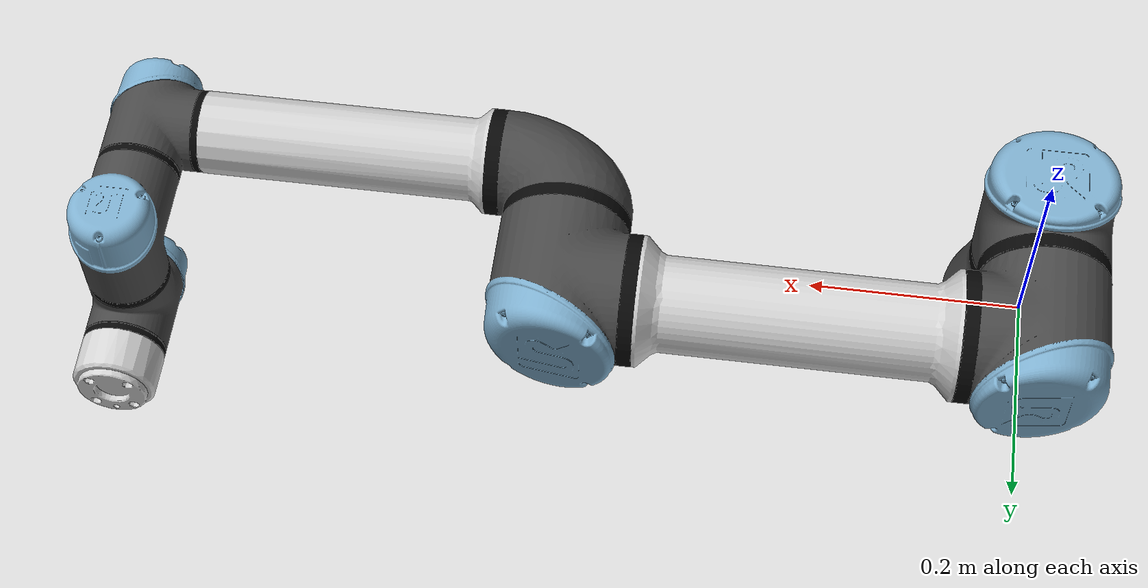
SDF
<?xml version="1.0"?>
<sdf version='1.6'>
  <model name='ur5e'>
    <link name='base_link'>
      <pose frame=''>0 0 0 0 -0 0</pose>
      <inertial>
        <pose frame=''>0 0 0 0 -0 0</pose>
        <mass>4</mass>
        <inertia>
          <ixx>0.00443333</ixx>
          <ixy>0</ixy>
          <ixz>0</ixz>
          <iyy>0.00443333</iyy>
          <iyz>0</iyz>
          <izz>0.0072</izz>
        </inertia>
      </inertial>
      <collision name='base_link_collision'>
        <pose frame=''>0 0 0 0 -0 0</pose>
        <geometry>
          <mesh>
            <scale>1 1 1</scale>
            <uri>model://ur_e_description/meshes/ur5e/collision/base.stl</uri>
          </mesh>
        </geometry>
      </collision>
      <visual name='base_link_visual'>
        <pose frame=''>0 0 0 0 -0 0</pose>
        <geometry>
          <mesh>
            <scale>1 1 1</scale>
            <uri>model://ur_e_description/meshes/ur5e/visual/base.dae</uri>
          </mesh>
        </geometry>
      </visual>
    </link>
    <joint name='world_joint' type='fixed'>
      <child>base_link</child>
      <parent>world</parent>
    </joint>
    <link name='shoulder_link'>
      <pose frame=''>0 0 0.163 0 -0 0</pose>
      <inertial>
        <pose frame=''>0 0 0 0 -0 0</pose>
        <mass>3.7</mass>
        <inertia>
          <ixx>0.0102675</ixx>
          <ixy>0</ixy>
          <ixz>0</ixz>
          <iyy>0.0102675</iyy>
          <iyz>0</iyz>
          <izz>0.00666</izz>
        </inertia>
      </inertial>
      <collision name='shoulder_link_collision'>
        <pose frame=''>0 0 0 0 -0 0</pose>
        <geometry>
          <mesh>
            <scale>1 1 1</scale>
            <uri>model://ur_e_description/meshes/ur5e/collision/shoulder.stl</uri>
          </mesh>
        </geometry>
        <surface>
          <contact>
            <ode/>
          </contact>
          <friction>
            <ode/>
          </friction>
        </surface>
      </collision>
      <visual name='shoulder_link_visual'>
        <pose frame=''>0 0 0 0 -0 0</pose>
        <geometry>
          <mesh>
            <scale>1 1 1</scale>
            <uri>model://ur_e_description/meshes/ur5e/visual/shoulder.dae</uri>
          </mesh>
        </geometry>
        <material>
          <script>
            <uri>__default__</uri>
            <name>__default__</name>
          </script>
        </material>
      </visual>
      <gravity>1</gravity>
      <velocity_decay/>
      <self_collide>1</self_collide>
    </link>
    <joint name='shoulder_pan_joint' type='revolute'>
      <child>shoulder_link</child>
      <parent>base_link</parent>
      <axis>
        <xyz>0 0 1</xyz>
        <limit>
          <lower>-6.28319</lower>
          <upper>6.28319</upper>
          <effort>150</effort>
          <velocity>3.14</velocity>
        </limit>
        <dynamics>
          <damping>0</damping>
          <friction>0</friction>
          <spring_reference>0</spring_reference>
          <spring_stiffness>0</spring_stiffness>
        </dynamics>
        <use_parent_model_frame>1</use_parent_model_frame>
      </axis>
    </joint>
    <link name='upper_arm_link'>
      <pose frame=''>0 0.138 0.163 3.14159 1.57079 3.14159</pose>
      <inertial>
        <pose frame=''>0 0 0.2125 0 -0 0</pose>
        <mass>8.393</mass>
        <inertia>
          <ixx>0.133886</ixx>
          <ixy>0</ixy>
          <ixz>0</ixz>
          <iyy>0.133886</iyy>
          <iyz>0</iyz>
          <izz>0.0151074</izz>
        </inertia>
      </inertial>
      <collision name='upper_arm_link_collision'>
        <pose frame=''>0 0 0 0 -0 0</pose>
        <geometry>
          <mesh>
            <scale>1 1 1</scale>
            <uri>model://ur_e_description/meshes/ur5e/collision/upperarm.stl</uri>
          </mesh>
        </geometry>
        <surface>
          <contact>
            <ode/>
          </contact>
          <friction>
            <ode/>
          </friction>
        </surface>
      </collision>
      <visual name='upper_arm_link_visual'>
        <pose frame=''>0 0 0 0 -0 0</pose>
        <geometry>
          <mesh>
            <scale>1 1 1</scale>
            <uri>model://ur_e_description/meshes/ur5e/visual/upperarm.dae</uri>
          </mesh>
        </geometry>
        <material>
          <script>
            <uri>__default__</uri>
            <name>__default__</name>
          </script>
        </material>
      </visual>
      <gravity>1</gravity>
      <velocity_decay/>
      <self_collide>1</self_collide>
    </link>
    <joint name='shoulder_lift_joint' type='revolute'>
      <child>upper_arm_link</child>
      <parent>shoulder_link</parent>
      <axis>
        <xyz>0 1 0</xyz>
        <limit>
          <lower>-6.28319</lower>
          <upper>6.28319</upper>
          <effort>150</effort>
          <velocity>3.14</velocity>
        </limit>
        <dynamics>
          <damping>0</damping>
          <friction>0</friction>
          <spring_reference>0</spring_reference>
          <spring_stiffness>0</spring_stiffness>
        </dynamics>
        <use_parent_model_frame>1</use_parent_model_frame>
      </axis>
    </joint>
    <link name='forearm_link'>
      <pose frame=''>0.425 0.007 0.163 3.14159 1.57079 3.14159</pose>
      <inertial>
        <pose frame=''>0 0 0.196 0 -0 0</pose>
        <mass>2.275</mass>
        <inertia>
          <ixx>0.0311796</ixx>
          <ixy>0</ixy>
          <ixz>0</ixz>
          <iyy>0.0311796</iyy>
          <iyz>0</iyz>
          <izz>0.004095</izz>
        </inertia>
      </inertial>
      <collision name='forearm_link_collision'>
        <pose frame=''>0 0 0 0 -0 0</pose>
        <geometry>
          <mesh>
            <scale>1 1 1</scale>
            <uri>model://ur_e_description/meshes/ur5e/collision/forearm.stl</uri>
          </mesh>
        </geometry>
        <surface>
          <contact>
            <ode/>
          </contact>
          <friction>
            <ode/>
          </friction>
        </surface>
      </collision>
      <visual name='forearm_link_visual'>
        <pose frame=''>0 0 0 0 -0 0</pose>
        <geometry>
          <mesh>
            <scale>1 1 1</scale>
            <uri>model://ur_e_description/meshes/ur5e/visual/forearm.dae</uri>
          </mesh>
        </geometry>
        <material>
          <script>
            <uri>__default__</uri>
            <name>__default__</name>
          </script>
        </material>
      </visual>
      <gravity>1</gravity>
      <velocity_decay/>
      <self_collide>1</self_collide>
    </link>
    <joint name='elbow_joint' type='revolute'>
      <child>forearm_link</child>
      <parent>upper_arm_link</parent>
      <axis>
        <xyz>0 1 0</xyz>
        <limit>
          <lower>-3.14159</lower>
          <upper>3.14159</upper>
          <effort>150</effort>
          <velocity>3.14</velocity>
        </limit>
        <dynamics>
          <damping>0</damping>
          <friction>0</friction>
          <spring_reference>0</spring_reference>
          <spring_stiffness>0</spring_stiffness>
        </dynamics>
        <use_parent_model_frame>1</use_parent_model_frame>
      </axis>
    </joint>
    <link name='wrist_1_link'>
      <pose frame=''>0.817 0.007 0.163 3.14159 0 3.14159</pose>
      <inertial>
        <pose frame=''>0 0.127 0 0 -0 0</pose>
        <mass>1.219</mass>
        <inertia>
          <ixx>0.0025599</ixx>
          <ixy>0</ixy>
          <ixz>0</ixz>
          <iyy>0.0025599</iyy>
          <iyz>0</iyz>
          <izz>0.0021942</izz>
        </inertia>
      </inertial>
      <collision name='wrist_1_link_collision'>
        <pose frame=''>0 0 0 0 -0 0</pose>
        <geometry>
          <mesh>
            <scale>1 1 1</scale>
            <uri>model://ur_e_description/meshes/ur5e/collision/wrist1.stl</uri>
          </mesh>
        </geometry>
        <surface>
          <contact>
            <ode/>
          </contact>
          <friction>
            <ode/>
          </friction>
        </surface>
      </collision>
      <visual name='wrist_1_link_visual'>
        <pose frame=''>0 0 0 0 -0 0</pose>
        <geometry>
          <mesh>
            <scale>1 1 1</scale>
            <uri>model://ur_e_description/meshes/ur5e/visual/wrist1.dae</uri>
          </mesh>
        </geometry>
        <material>
          <script>
            <uri>__default__</uri>
            <name>__default__</name>
          </script>
        </material>
      </visual>
      <gravity>1</gravity>
      <velocity_decay/>
      <self_collide>1</self_collide>
    </link>
    <joint name='wrist_1_joint' type='revolute'>
      <child>wrist_1_link</child>
      <parent>forearm_link</parent>
      <axis>
        <xyz>0 1 0</xyz>
        <limit>
          <lower>-6.28319</lower>
          <upper>6.28319</upper>
          <effort>28</effort>
          <velocity>6.28</velocity>
        </limit>
        <dynamics>
          <damping>0</damping>
          <friction>0</friction>
          <spring_reference>0</spring_reference>
          <spring_stiffness>0</spring_stiffness>
        </dynamics>
        <use_parent_model_frame>1</use_parent_model_frame>
      </axis>
    </joint>
    <link name='wrist_2_link'>
      <pose frame=''>0.817 0.134 0.163 3.14159 0 3.14159</pose>
      <inertial>
        <pose frame=''>0 0 0.1 0 -0 0</pose>
        <mass>1.219</mass>
        <inertia>
          <ixx>0.0025599</ixx>
          <ixy>0</ixy>
          <ixz>0</ixz>
          <iyy>0.0025599</iyy>
          <iyz>0</iyz>
          <izz>0.0021942</izz>
        </inertia>
      </inertial>
      <collision name='wrist_2_link_collision'>
        <pose frame=''>0 0 0 0 -0 0</pose>
        <geometry>
          <mesh>
            <scale>1 1 1</scale>
            <uri>model://ur_e_description/meshes/ur5e/collision/wrist2.stl</uri>
          </mesh>
        </geometry>
        <surface>
          <contact>
            <ode/>
          </contact>
          <friction>
            <ode/>
          </friction>
        </surface>
      </collision>
      <visual name='wrist_2_link_visual'>
        <pose frame=''>0 0 0 0 -0 0</pose>
        <geometry>
          <mesh>
            <scale>1 1 1</scale>
            <uri>model://ur_e_description/meshes/ur5e/visual/wrist2.dae</uri>
          </mesh>
        </geometry>
        <material>
          <script>
            <uri>__default__</uri>
            <name>__default__</name>
          </script>
        </material>
      </visual>
      <gravity>1</gravity>
      <velocity_decay/>
      <self_collide>1</self_collide>
    </link>
    <joint name='wrist_2_joint' type='revolute'>
      <child>wrist_2_link</child>
      <parent>wrist_1_link</parent>
      <axis>
        <xyz>0 0 -1</xyz>
        <limit>
          <lower>-6.28319</lower>
          <upper>6.28319</upper>
          <effort>28</effort>
          <velocity>6.28</velocity>
        </limit>
        <dynamics>
          <damping>0</damping>
          <friction>0</friction>
          <spring_reference>0</spring_reference>
          <spring_stiffness>0</spring_stiffness>
        </dynamics>
        <use_parent_model_frame>1</use_parent_model_frame>
      </axis>
    </joint>
    <link name='wrist_3_link'>
      <pose frame=''>0.817 0.134 0.063 3.14159 0 3.14159</pose>
      <inertial>
        <pose frame=''>0 0.0771 0 1.5708 -0 0</pose>
        <mass>0.1879</mass>
        <inertia>
          <ixx>9.89041e-05</ixx>
          <ixy>0</ixy>
          <ixz>0</ixz>
          <iyy>9.89041e-05</iyy>
          <iyz>0</iyz>
          <izz>0.000132117</izz>
        </inertia>
      </inertial>
      <collision name='wrist_3_link_collision'>
        <pose frame=''>0 0 0 0 -0 0</pose>
        <geometry>
          <mesh>
            <scale>1 1 1</scale>
            <uri>model://ur_e_description/meshes/ur5e/collision/wrist3.stl</uri>
          </mesh>
        </geometry>
        <surface>
          <contact>
            <ode/>
          </contact>
          <friction>
            <ode/>
          </friction>
        </surface>
      </collision>
      <collision name='wrist_3_link_fixed_joint_lump__ee_link_collision_1'>
        <pose frame=''>-0 0.09 0 0 -0 1.5708</pose>
        <geometry>
          <box>
            <size>0.01 0.01 0.01</size>
          </box>
        </geometry>
        <surface>
          <contact>
            <ode/>
          </contact>
          <friction>
            <ode/>
          </friction>
        </surface>
      </collision>
      <visual name='wrist_3_link_visual'>
        <pose frame=''>0 0 0 0 -0 0</pose>
        <geometry>
          <mesh>
            <scale>1 1 1</scale>
            <uri>model://ur_e_description/meshes/ur5e/visual/wrist3.dae</uri>
          </mesh>
        </geometry>
        <material>
          <script>
            <uri>__default__</uri>
            <name>__default__</name>
          </script>
        </material>
      </visual>
      <velocity_decay/>
      <gravity>1</gravity>
      <velocity_decay/>
      <self_collide>1</self_collide>
    </link>
    <joint name='wrist_3_joint' type='revolute'>
      <child>wrist_3_link</child>
      <parent>wrist_2_link</parent>
      <axis>
        <xyz>0 1 0</xyz>
        <limit>
          <lower>-6.28319</lower>
          <upper>6.28319</upper>
          <effort>28</effort>
          <velocity>6.28</velocity>
        </limit>
        <dynamics>
          <damping>0</damping>
          <friction>0</friction>
          <spring_reference>0</spring_reference>
          <spring_stiffness>0</spring_stiffness>
        </dynamics>
        <use_parent_model_frame>1</use_parent_model_frame>
      </axis>
    </joint>
    <static>0</static>
    <plugin name='ros_control' filename='libgazebo_ros_control.so'/>
  </model>
</sdf>
